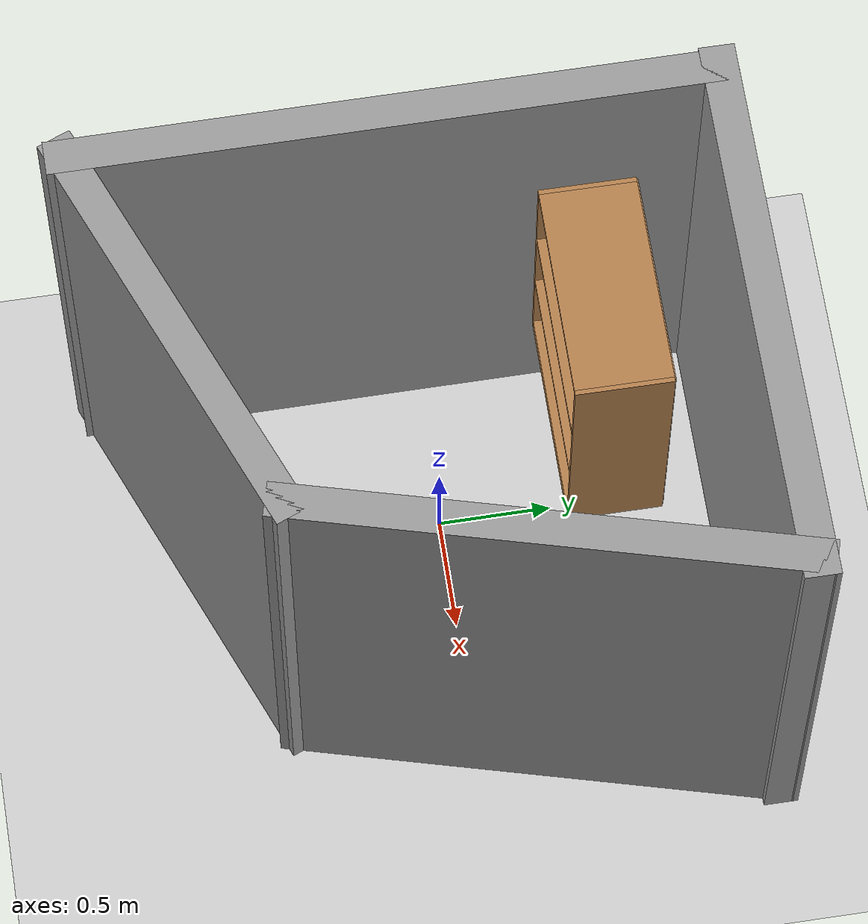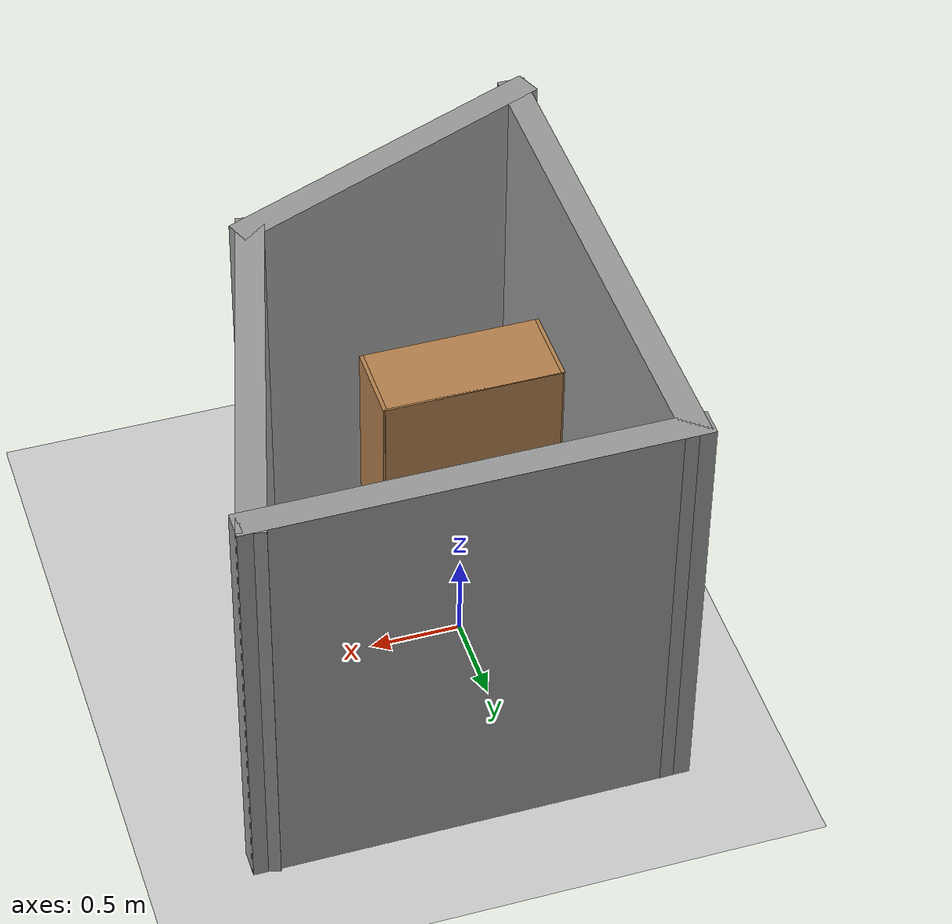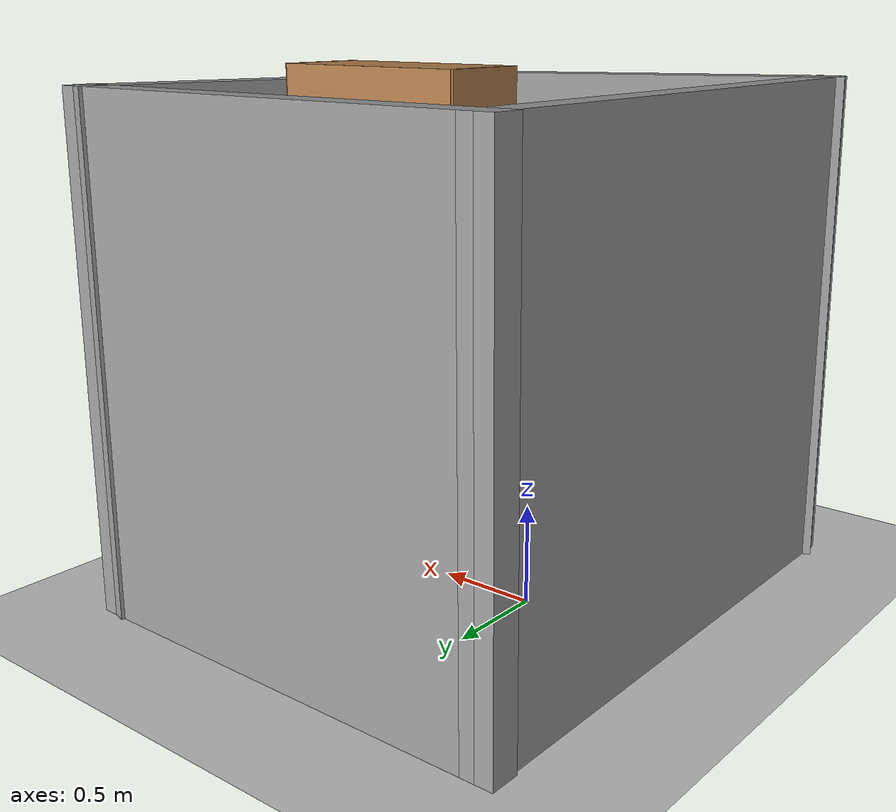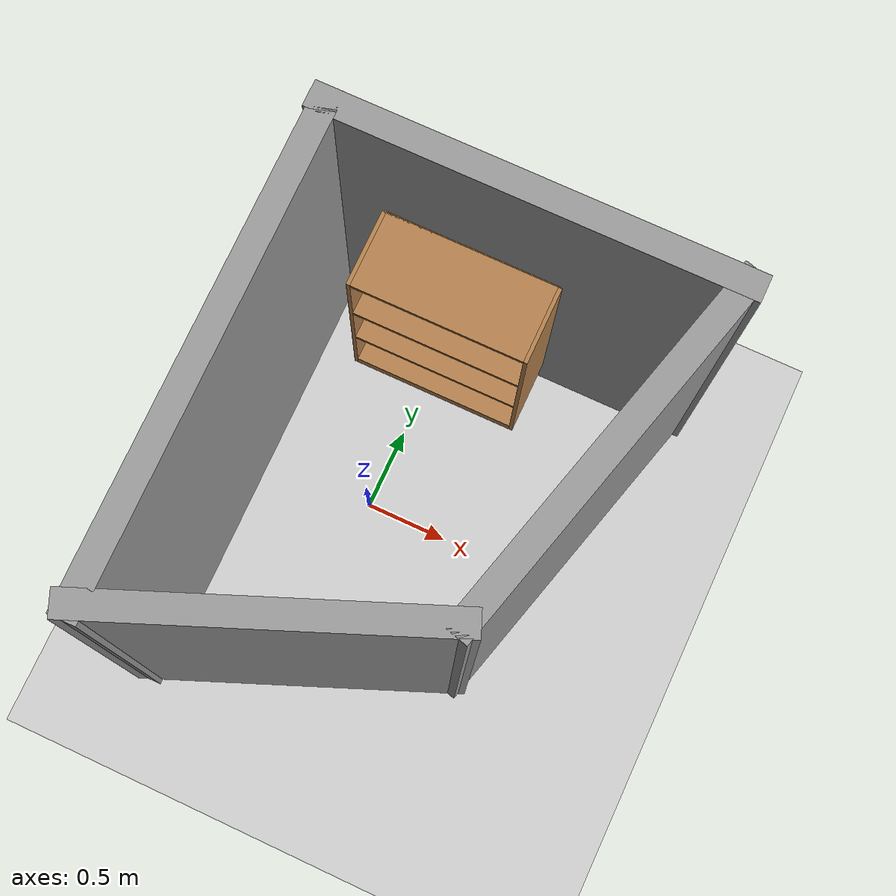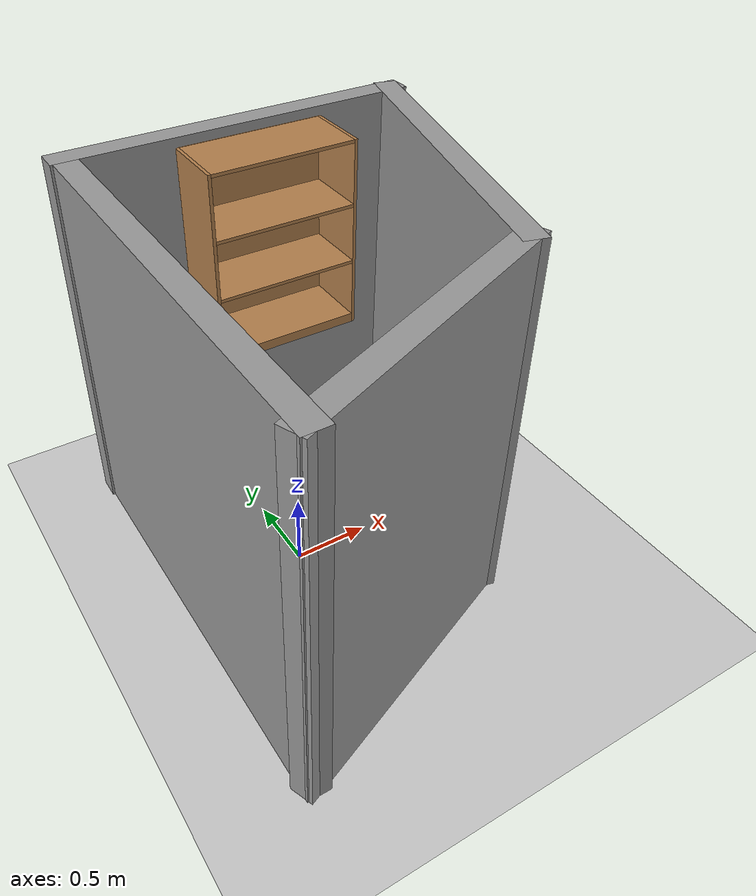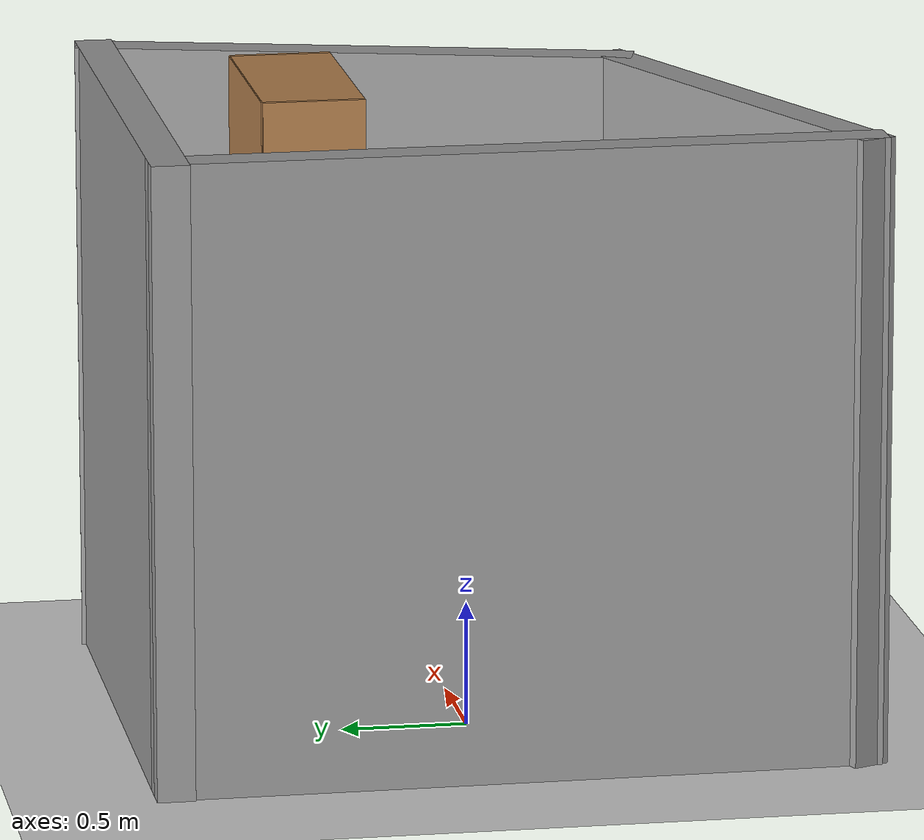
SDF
<sdf version="1.7">
 <world name="default">
  <light name="sun" type="directional">
   <pose>0 0 10 0 -0 0</pose>
   <diffuse>0.8 0.8 0.8 1</diffuse>
   <specular>0.2 0.2 0.2 1</specular>
   <attenuation>
    <range>1000</range>
    <constant>0.9</constant>
    <linear>0.01</linear>
    <quadratic>0.001</quadratic>
   </attenuation>
   <direction>-0.5 0.1 -0.9</direction>
   <spot><inner_angle>0</inner_angle><outer_angle>0</outer_angle><falloff>0</falloff></spot>
  </light>
  <model name="ground_plane">
   <static>1</static>
   <link name="link">
    <collision name="collision">
     <geometry><plane><normal>0 0 1</normal><size>100 100</size></plane></geometry>
     <surface>
      <contact><collide_bitmask>65535</collide_bitmask></contact>
      <friction><ode><mu>100</mu><mu2>50</mu2></ode></friction>
     </surface>
    </collision>
    <visual name="visual">
     <cast_shadows>0</cast_shadows>
     <geometry><plane><normal>0 0 1</normal><size>100 100</size></plane></geometry>
     <material>
      <script><uri>file://media/materials/scripts/gazebo.material</uri><name>Gazebo/Grey</name></script>
     </material>
    </visual>
   </link>
  </model>
  <gravity>0 0 -9.8</gravity>
  <magnetic_field>6e-06 2.3e-05 -4.2e-05</magnetic_field>
  <atmosphere type="adiabatic"/>
  <physics type="ode">
   <max_step_size>0.001</max_step_size>
   <real_time_factor>1</real_time_factor>
   <real_time_update_rate>1000</real_time_update_rate>
  </physics>
  <scene><ambient>0.4 0.4 0.4 1</ambient><background>0.7 0.7 0.7 1</background><shadows>1</shadows></scene>
  <audio><device>default</device></audio>
  <spherical_coordinates>
   <surface_model>EARTH_WGS84</surface_model>
   <latitude_deg>0</latitude_deg>
   <longitude_deg>0</longitude_deg>
   <elevation>0</elevation>
   <heading_deg>0</heading_deg>
  </spherical_coordinates>
  <model name="bookshelf">
   <static>1</static>
   <link name="link">
    <inertial><mass>1</mass></inertial>
    <collision name="back">
     <pose>0 0.005 0.6 0 -0 0</pose>
     <geometry><box><size>0.9 0.01 1.2</size></box></geometry>
    </collision>
    <visual name="visual1">
     <pose>0 0.005 0.6 0 -0 0</pose>
     <geometry><box><size>0.9 0.01 1.2</size></box></geometry>
     <material>
      <script><uri>file://media/materials/scripts/gazebo.material</uri><name>Gazebo/Wood</name></script>
     </material>
    </visual>
    <collision name="left_side">
     <pose>0.45 -0.195 0.6 0 -0 0</pose>
     <geometry><box><size>0.02 0.4 1.2</size></box></geometry>
    </collision>
    <visual name="visual2">
     <pose>0.45 -0.195 0.6 0 -0 0</pose>
     <geometry><box><size>0.02 0.4 1.2</size></box></geometry>
     <material>
      <script><uri>file://media/materials/scripts/gazebo.material</uri><name>Gazebo/Wood</name></script>
     </material>
    </visual>
    <collision name="right_side">
     <pose>-0.45 -0.195 0.6 0 -0 0</pose>
     <geometry><box><size>0.02 0.4 1.2</size></box></geometry>
    </collision>
    <visual name="visual3">
     <pose>-0.45 -0.195 0.6 0 -0 0</pose>
     <geometry><box><size>0.02 0.4 1.2</size></box></geometry>
     <material>
      <script><uri>file://media/materials/scripts/gazebo.material</uri><name>Gazebo/Wood</name></script>
     </material>
    </visual>
    <collision name="bottom">
     <pose>0 -0.195 0.03 0 -0 0</pose>
     <geometry><box><size>0.88 0.4 0.06</size></box></geometry>
    </collision>
    <visual name="visual4">
     <pose>0 -0.195 0.03 0 -0 0</pose>
     <geometry><box><size>0.88 0.4 0.06</size></box></geometry>
     <material>
      <script><uri>file://media/materials/scripts/gazebo.material</uri><name>Gazebo/Wood</name></script>
     </material>
    </visual>
    <collision name="top">
     <pose>0 -0.195 1.19 0 -0 0</pose>
     <geometry><box><size>0.88 0.4 0.02</size></box></geometry>
    </collision>
    <visual name="visual5">
     <pose>0 -0.195 1.19 0 -0 0</pose>
     <geometry><box><size>0.88 0.4 0.02</size></box></geometry>
     <material>
      <script><uri>file://media/materials/scripts/gazebo.material</uri><name>Gazebo/Wood</name></script>
     </material>
    </visual>
    <collision name="low_shelf">
     <pose>0 -0.195 0.43 0 -0 0</pose>
     <geometry><box><size>0.88 0.4 0.02</size></box></geometry>
    </collision>
    <visual name="visual6">
     <pose>0 -0.195 0.43 0 -0 0</pose>
     <geometry><box><size>0.88 0.4 0.02</size></box></geometry>
     <material>
      <script><uri>file://media/materials/scripts/gazebo.material</uri><name>Gazebo/Wood</name></script>
     </material>
    </visual>
    <collision name="high_shelf">
     <pose>0 -0.195 0.8 0 -0 0</pose>
     <geometry><box><size>0.88 0.4 0.02</size></box></geometry>
    </collision>
    <visual name="visual7">
     <pose>0 -0.195 0.8 0 -0 0</pose>
     <geometry><box><size>0.88 0.4 0.02</size></box></geometry>
     <material>
      <script><uri>file://media/materials/scripts/gazebo.material</uri><name>Gazebo/Wood</name></script>
     </material>
    </visual>
   </link>
   <pose>0.21386 0.828308 1.39891 0 -0 0</pose>
  </model>
  <model name="my_map1">
   <pose>0.343229 -0.083798 0 0 -0 0</pose>
   <link name="Wall_0">
    <collision name="Wall_0_Collision">
     <geometry><box><size>2.38688 0.15 2.5</size></box></geometry>
     <pose>0 0 1.25 0 -0 0</pose>
    </collision>
    <visual name="Wall_0_Visual">
     <pose>0 0 1.25 0 -0 0</pose>
     <geometry><box><size>2.38688 0.15 2.5</size></box></geometry>
     <material>
      <script><uri>file://media/materials/scripts/gazebo.material</uri><name>Gazebo/Grey</name></script>
      <ambient>1 1 1 1</ambient>
     </material>
     <meta><layer>0</layer></meta>
    </visual>
    <pose>0.002924 1.35471 0 0 -0 3.14159</pose>
   </link>
   <link name="Wall_1">
    <collision name="Wall_1_Collision">
     <geometry><box><size>2.85362 0.15 2.5</size></box></geometry>
     <pose>0 0 1.25 0 -0 0</pose>
    </collision>
    <visual name="Wall_1_Visual">
     <pose>0 0 1.25 0 -0 0</pose>
     <geometry><box><size>2.85362 0.15 2.5</size></box></geometry>
     <material>
      <script><uri>file://media/materials/scripts/gazebo.material</uri><name>Gazebo/Grey</name></script>
      <ambient>1 1 1 1</ambient>
     </material>
     <meta><layer>0</layer></meta>
    </visual>
    <pose>-1.0927 0.002924 0 0 -0 -1.56517</pose>
   </link>
   <link name="Wall_2">
    <collision name="Wall_2_Collision">
     <geometry><box><size>1.94477 0.15 2.5</size></box></geometry>
     <pose>0 0 1.25 0 -0 0</pose>
    </collision>
    <visual name="Wall_2_Visual">
     <pose>0 0 1.25 0 -0 0</pose>
     <geometry><box><size>1.94477 0.15 2.5</size></box></geometry>
     <material>
      <script><uri>file://media/materials/scripts/gazebo.material</uri><name>Gazebo/Grey</name></script>
      <ambient>1 1 1 1</ambient>
     </material>
     <meta><layer>0</layer></meta>
    </visual>
    <pose>-0.268836 -1.0113 0 0 -0 0.385658</pose>
   </link>
   <link name="Wall_3">
    <collision name="Wall_3_Collision">
     <geometry><box><size>2.25 0.15 2.5</size></box></geometry>
     <pose>0 0 1.25 0 -0 0</pose>
    </collision>
    <visual name="Wall_3_Visual">
     <pose>0 0 1.25 0 -0 0</pose>
     <geometry><box><size>2.25 0.15 2.5</size></box></geometry>
     <material>
      <script><uri>file://media/materials/scripts/gazebo.material</uri><name>Gazebo/Grey</name></script>
      <ambient>1 1 1 1</ambient>
     </material>
     <meta><layer>0</layer></meta>
    </visual>
    <pose>0.834395 0.340491 0 0 -0 1.309</pose>
   </link>
   <static>1</static>
  </model>
 </world>
</sdf>
